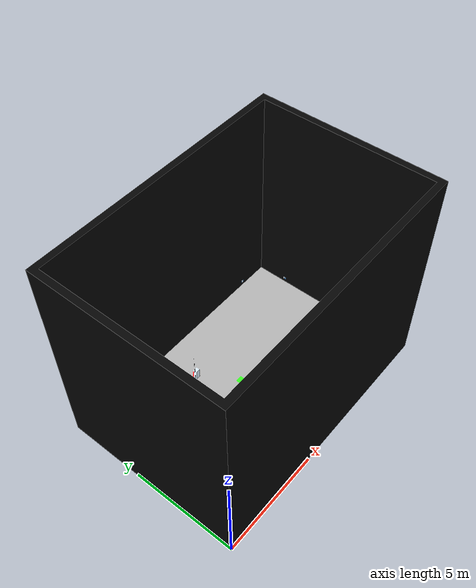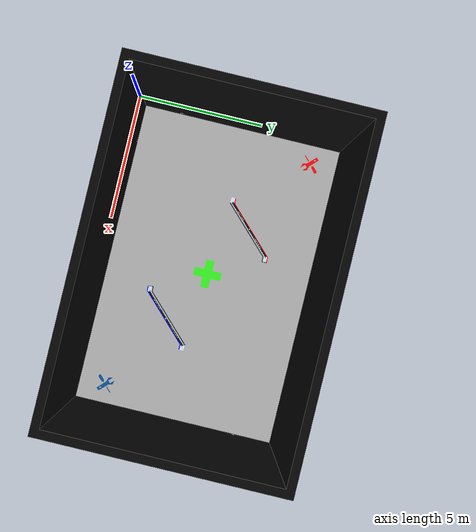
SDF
<?xml version='1.0' encoding='utf-8'?>
<sdf version='1.7'>
  <world name='default'>
    <gravity>0 0 -9.81</gravity>
    <!-- Physics -->
    <plugin filename="gz-sim-physics-system" name="gz::sim::systems::Physics">
    </plugin>

    <!-- Forwards simulation state to the GUI -->
    <plugin filename="gz-sim-scene-broadcaster-system" name="gz::sim::systems::SceneBroadcaster">
    </plugin>

    <!-- Processes user commands, like translate and create -->
    <plugin filename="gz-sim-user-commands-system" name="gz::sim::systems::UserCommands">
    </plugin>

    <!-- Generates rendering sensor data -->
    <plugin filename="gz-sim-sensors-system" name="gz::sim::systems::Sensors">
      <render_engine>ogre2</render_engine>
    </plugin>

    <plugin filename="gz-sim-imu-system" name="gz::sim::systems::Imu">
    </plugin>

    <light type='directional' name='direct_light'>
      <visualize>false</visualize>
      <cast_shadows>true</cast_shadows>
      <pose>7.4 3.6 10 0 0 0</pose>
      <diffuse>1.0 1.0 1.0 1</diffuse>
      <specular>0.5 0.5 0.5 1</specular>
      <attenuation>
        <range>1000</range>
        <constant>0.9</constant>
        <linear>0.01</linear>
        <quadratic>0.001</quadratic>
      </attenuation>
      <direction>0 0 -1</direction>
    </light>

    <model name='rmul_2025'>
      <include>
        <uri>model://rmul_2025</uri>
      </include>
      <!-- Centered 12.6 x 8.6 m mesh shifted into the zero-origin map frame. -->
      <pose>6.3 4.3 0 0 0 0</pose>
      <static>true</static>
    </model>
  </world>
</sdf>

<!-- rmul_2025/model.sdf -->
<sdf version='1.6'>
  <model name='rmul_2025'>
    <static>true</static>
    <link name='body'>
      <pose frame=''>0 0 0 0 0 0</pose>
      <self_collide>0</self_collide>
      <kinematic>0</kinematic>
      <gravity>1</gravity>
      <visual name='visual'>
        <geometry>
          <mesh>
            <uri>model://rmul_2025/meshes/rmul_2025.dae</uri>
            <scale>1 1 1</scale>
          </mesh>
        </geometry>
      </visual>
      <collision name='collision'>
        <geometry>
          <mesh>
            <uri>model://rmul_2025/meshes/rmul_2025.dae</uri>
            <scale>1 1 1</scale>
          </mesh>
        </geometry>
      </collision>
    </link>
  </model>
</sdf>
